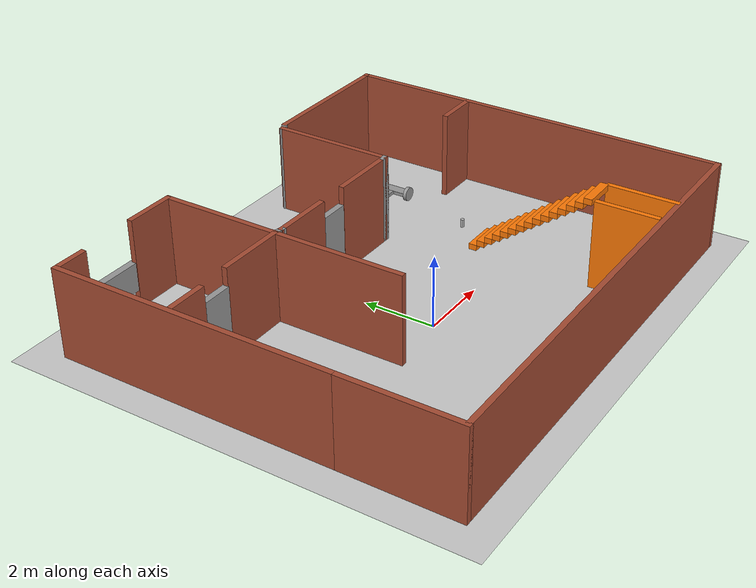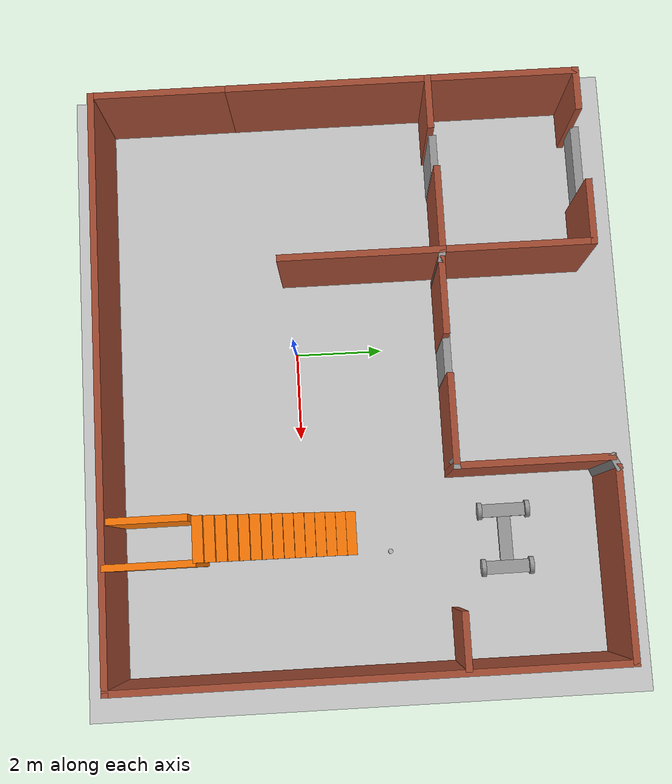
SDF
<sdf version="1.6">
 <world name="default">
  <model name="ground_plane">
   <static>1</static>
   <link name="link">
    <collision name="collision">
     <geometry><plane><normal>0 0 1</normal><size>100 100</size></plane></geometry>
     <surface>
      <contact><collide_bitmask>65535</collide_bitmask></contact>
      <friction><ode><mu>100</mu><mu2>50</mu2></ode></friction>
     </surface>
    </collision>
    <visual name="visual">
     <cast_shadows>0</cast_shadows>
     <geometry><plane><normal>0 0 1</normal><size>100 100</size></plane></geometry>
     <material>
      <script><uri>file://media/materials/scripts/gazebo.material</uri><name>Gazebo/Grey</name></script>
     </material>
    </visual>
   </link>
  </model>
  <model name="mybuilding">
   <pose>0.81 1.31205 0 0 -0 0</pose>
   <link name="Door_0">
    <collision name="Door_0_Collision">
     <geometry><box><size>0.9 0.17 2</size></box></geometry>
     <pose>0 0 1 0 -0 0</pose>
    </collision>
    <visual name="Door_0_Visual">
     <pose>0 0 1 0 -0 0</pose>
     <geometry><box><size>0.9 0.17 2</size></box></geometry>
     <material>
      <script><uri>file://media/materials/scripts/gazebo.material</uri><name>Gazebo/Grey</name></script>
     </material>
    </visual>
    <pose>-0.266751 2.08903 0 0 -0 0</pose>
   </link>
   <link name="Door_1">
    <collision name="Door_1_Collision">
     <geometry><box><size>0.9 0.17 2</size></box></geometry>
     <pose>0 0 1 0 -0 0</pose>
    </collision>
    <visual name="Door_1_Visual">
     <pose>0 0 1 0 -0 0</pose>
     <geometry><box><size>0.9 0.17 2</size></box></geometry>
     <material>
      <script><uri>file://media/materials/scripts/gazebo.material</uri><name>Gazebo/Grey</name></script>
     </material>
    </visual>
    <pose>-4.93273 2.09956 0 0 -0 0</pose>
   </link>
   <link name="Stairs_0">
    <visual name="Stairs_0_Visual_0">
     <pose>3.4625 -0.251804 0.083333 0 -0 0</pose>
     <geometry><box><size>1 0.233333 0.166667</size></box></geometry>
     <material>
      <script><uri>file://media/materials/scripts/gazebo.material</uri><name>Gazebo/Grey</name></script>
      <ambient>0.996078 0.47451 0.0196078 1</ambient>
     </material>
     <meta><layer>0</layer></meta>
    </visual>
    <collision name="Stairs_0_Collision_0">
     <geometry><box><size>1 0.233333 0.166667</size></box></geometry>
     <pose>3.4625 -0.251804 0.083333 0 -0 0</pose>
    </collision>
    <visual name="Stairs_0_Visual_1">
     <pose>3.4625 -0.485137 0.25 0 -0 0</pose>
     <geometry><box><size>1 0.233333 0.166667</size></box></geometry>
     <material>
      <script><uri>file://media/materials/scripts/gazebo.material</uri><name>Gazebo/Grey</name></script>
      <ambient>0.996078 0.47451 0.0196078 1</ambient>
     </material>
     <meta><layer>0</layer></meta>
    </visual>
    <collision name="Stairs_0_Collision_1">
     <geometry><box><size>1 0.233333 0.166667</size></box></geometry>
     <pose>3.4625 -0.485137 0.25 0 -0 0</pose>
    </collision>
    <visual name="Stairs_0_Visual_2">
     <pose>3.4625 -0.71847 0.416667 0 -0 0</pose>
     <geometry><box><size>1 0.233333 0.166667</size></box></geometry>
     <material>
      <script><uri>file://media/materials/scripts/gazebo.material</uri><name>Gazebo/Grey</name></script>
      <ambient>0.996078 0.47451 0.0196078 1</ambient>
     </material>
     <meta><layer>0</layer></meta>
    </visual>
    <collision name="Stairs_0_Collision_2">
     <geometry><box><size>1 0.233333 0.166667</size></box></geometry>
     <pose>3.4625 -0.71847 0.416667 0 -0 0</pose>
    </collision>
    <visual name="Stairs_0_Visual_3">
     <pose>3.4625 -0.951804 0.583333 0 -0 0</pose>
     <geometry><box><size>1 0.233333 0.166667</size></box></geometry>
     <material>
      <script><uri>file://media/materials/scripts/gazebo.material</uri><name>Gazebo/Grey</name></script>
      <ambient>0.996078 0.47451 0.0196078 1</ambient>
     </material>
     <meta><layer>0</layer></meta>
    </visual>
    <collision name="Stairs_0_Collision_3">
     <geometry><box><size>1 0.233333 0.166667</size></box></geometry>
     <pose>3.4625 -0.951804 0.583333 0 -0 0</pose>
    </collision>
    <visual name="Stairs_0_Visual_4">
     <pose>3.4625 -1.18514 0.75 0 -0 0</pose>
     <geometry><box><size>1 0.233333 0.166667</size></box></geometry>
     <material>
      <script><uri>file://media/materials/scripts/gazebo.material</uri><name>Gazebo/Grey</name></script>
      <ambient>0.996078 0.47451 0.0196078 1</ambient>
     </material>
     <meta><layer>0</layer></meta>
    </visual>
    <collision name="Stairs_0_Collision_4">
     <geometry><box><size>1 0.233333 0.166667</size></box></geometry>
     <pose>3.4625 -1.18514 0.75 0 -0 0</pose>
    </collision>
    <visual name="Stairs_0_Visual_5">
     <pose>3.4625 -1.41847 0.916667 0 -0 0</pose>
     <geometry><box><size>1 0.233333 0.166667</size></box></geometry>
     <material>
      <script><uri>file://media/materials/scripts/gazebo.material</uri><name>Gazebo/Grey</name></script>
      <ambient>0.996078 0.47451 0.0196078 1</ambient>
     </material>
     <meta><layer>0</layer></meta>
    </visual>
    <collision name="Stairs_0_Collision_5">
     <geometry><box><size>1 0.233333 0.166667</size></box></geometry>
     <pose>3.4625 -1.41847 0.916667 0 -0 0</pose>
    </collision>
    <visual name="Stairs_0_Visual_6">
     <pose>3.4625 -1.6518 1.08333 0 -0 0</pose>
     <geometry><box><size>1 0.233333 0.166667</size></box></geometry>
     <material>
      <script><uri>file://media/materials/scripts/gazebo.material</uri><name>Gazebo/Grey</name></script>
      <ambient>0.996078 0.47451 0.0196078 1</ambient>
     </material>
     <meta><layer>0</layer></meta>
    </visual>
    <collision name="Stairs_0_Collision_6">
     <geometry><box><size>1 0.233333 0.166667</size></box></geometry>
     <pose>3.4625 -1.6518 1.08333 0 -0 0</pose>
    </collision>
    <visual name="Stairs_0_Visual_7">
     <pose>3.4625 -1.88514 1.25 0 -0 0</pose>
     <geometry><box><size>1 0.233333 0.166667</size></box></geometry>
     <material>
      <script><uri>file://media/materials/scripts/gazebo.material</uri><name>Gazebo/Grey</name></script>
      <ambient>0.996078 0.47451 0.0196078 1</ambient>
     </material>
     <meta><layer>0</layer></meta>
    </visual>
    <collision name="Stairs_0_Collision_7">
     <geometry><box><size>1 0.233333 0.166667</size></box></geometry>
     <pose>3.4625 -1.88514 1.25 0 -0 0</pose>
    </collision>
    <visual name="Stairs_0_Visual_8">
     <pose>3.4625 -2.11847 1.41667 0 -0 0</pose>
     <geometry><box><size>1 0.233333 0.166667</size></box></geometry>
     <material>
      <script><uri>file://media/materials/scripts/gazebo.material</uri><name>Gazebo/Grey</name></script>
      <ambient>0.996078 0.47451 0.0196078 1</ambient>
     </material>
     <meta><layer>0</layer></meta>
    </visual>
    <collision name="Stairs_0_Collision_8">
     <geometry><box><size>1 0.233333 0.166667</size></box></geometry>
     <pose>3.4625 -2.11847 1.41667 0 -0 0</pose>
    </collision>
    <visual name="Stairs_0_Visual_9">
     <pose>3.4625 -2.3518 1.58333 0 -0 0</pose>
     <geometry><box><size>1 0.233333 0.166667</size></box></geometry>
     <material>
      <script><uri>file://media/materials/scripts/gazebo.material</uri><name>Gazebo/Grey</name></script>
      <ambient>0.996078 0.47451 0.0196078 1</ambient>
     </material>
     <meta><layer>0</layer></meta>
    </visual>
    <collision name="Stairs_0_Collision_9">
     <geometry><box><size>1 0.233333 0.166667</size></box></geometry>
     <pose>3.4625 -2.3518 1.58333 0 -0 0</pose>
    </collision>
    <visual name="Stairs_0_Visual_10">
     <pose>3.4625 -2.58514 1.75 0 -0 0</pose>
     <geometry><box><size>1 0.233333 0.166667</size></box></geometry>
     <material>
      <script><uri>file://media/materials/scripts/gazebo.material</uri><name>Gazebo/Grey</name></script>
      <ambient>0.996078 0.47451 0.0196078 1</ambient>
     </material>
     <meta><layer>0</layer></meta>
    </visual>
    <collision name="Stairs_0_Collision_10">
     <geometry><box><size>1 0.233333 0.166667</size></box></geometry>
     <pose>3.4625 -2.58514 1.75 0 -0 0</pose>
    </collision>
    <visual name="Stairs_0_Visual_11">
     <pose>3.4625 -2.81847 1.91667 0 -0 0</pose>
     <geometry><box><size>1 0.233333 0.166667</size></box></geometry>
     <material>
      <script><uri>file://media/materials/scripts/gazebo.material</uri><name>Gazebo/Grey</name></script>
      <ambient>0.996078 0.47451 0.0196078 1</ambient>
     </material>
     <meta><layer>0</layer></meta>
    </visual>
    <collision name="Stairs_0_Collision_11">
     <geometry><box><size>1 0.233333 0.166667</size></box></geometry>
     <pose>3.4625 -2.81847 1.91667 0 -0 0</pose>
    </collision>
    <visual name="Stairs_0_Visual_12">
     <pose>3.4625 -3.0518 2.08333 0 -0 0</pose>
     <geometry><box><size>1 0.233333 0.166667</size></box></geometry>
     <material>
      <script><uri>file://media/materials/scripts/gazebo.material</uri><name>Gazebo/Grey</name></script>
      <ambient>0.996078 0.47451 0.0196078 1</ambient>
     </material>
     <meta><layer>0</layer></meta>
    </visual>
    <collision name="Stairs_0_Collision_12">
     <geometry><box><size>1 0.233333 0.166667</size></box></geometry>
     <pose>3.4625 -3.0518 2.08333 0 -0 0</pose>
    </collision>
    <visual name="Stairs_0_Visual_13">
     <pose>3.4625 -3.28514 2.25 0 -0 0</pose>
     <geometry><box><size>1 0.233333 0.166667</size></box></geometry>
     <material>
      <script><uri>file://media/materials/scripts/gazebo.material</uri><name>Gazebo/Grey</name></script>
      <ambient>0.996078 0.47451 0.0196078 1</ambient>
     </material>
     <meta><layer>0</layer></meta>
    </visual>
    <collision name="Stairs_0_Collision_13">
     <geometry><box><size>1 0.233333 0.166667</size></box></geometry>
     <pose>3.4625 -3.28514 2.25 0 -0 0</pose>
    </collision>
    <visual name="Stairs_0_Visual_14">
     <pose>3.4625 -3.51847 2.41667 0 -0 0</pose>
     <geometry><box><size>1 0.233333 0.166667</size></box></geometry>
     <material>
      <script><uri>file://media/materials/scripts/gazebo.material</uri><name>Gazebo/Grey</name></script>
      <ambient>0.996078 0.47451 0.0196078 1</ambient>
     </material>
     <meta><layer>0</layer></meta>
    </visual>
    <collision name="Stairs_0_Collision_14">
     <geometry><box><size>1 0.233333 0.166667</size></box></geometry>
     <pose>3.4625 -3.51847 2.41667 0 -0 0</pose>
    </collision>
   </link>
   <link name="Wall_0">
    <collision name="Wall_0_Collision">
     <geometry><box><size>3.25 0.15 2.5</size></box></geometry>
     <pose>0 0 1.25 0 -0 0</pose>
    </collision>
    <visual name="Wall_0_Visual">
     <pose>0 0 1.25 0 -0 0</pose>
     <geometry><box><size>3.25 0.15 2.5</size></box></geometry>
     <material>
      <script><uri>file://media/materials/scripts/gazebo.material</uri><name>Gazebo/Bricks</name></script>
      <ambient>0 0 1 1</ambient>
     </material>
     <meta><layer>0</layer></meta>
    </visual>
    <pose>-6.55 -4.01205 0 0 0 -1.5708</pose>
   </link>
   <link name="Wall_1">
    <collision name="Wall_1_Collision">
     <geometry><box><size>13.25 0.15 2.5</size></box></geometry>
     <pose>0 0 1.25 0 -0 0</pose>
    </collision>
    <visual name="Wall_1_Visual">
     <pose>0 0 1.25 0 -0 0</pose>
     <geometry><box><size>13.25 0.15 2.5</size></box></geometry>
     <material>
      <script><uri>file://media/materials/scripts/gazebo.material</uri><name>Gazebo/Bricks</name></script>
      <ambient>0 0 1 1</ambient>
     </material>
     <meta><layer>0</layer></meta>
    </visual>
    <pose>0 -5.56205 0 0 -0 0</pose>
   </link>
   <link name="Wall_14">
    <collision name="Wall_14_Collision">
     <geometry><box><size>11.25 0.15 2.5</size></box></geometry>
     <pose>0 0 1.25 0 -0 0</pose>
    </collision>
    <visual name="Wall_14_Visual">
     <pose>0 0 1.25 0 -0 0</pose>
     <geometry><box><size>11.25 0.15 2.5</size></box></geometry>
     <material>
      <script><uri>file://media/materials/scripts/gazebo.material</uri><name>Gazebo/Bricks</name></script>
      <ambient>1 1 1 1</ambient>
     </material>
     <meta><layer>0</layer></meta>
    </visual>
    <pose>6.55 -0.012052 0 0 -0 1.5708</pose>
   </link>
   <link name="Wall_15">
    <collision name="Wall_15_Collision">
     <geometry><box><size>4.25 0.15 2.5</size></box></geometry>
     <pose>0 0 1.25 0 -0 0</pose>
    </collision>
    <visual name="Wall_15_Visual">
     <pose>0 0 1.25 0 -0 0</pose>
     <geometry><box><size>4.25 0.15 2.5</size></box></geometry>
     <material>
      <script><uri>file://media/materials/scripts/gazebo.material</uri><name>Gazebo/Bricks</name></script>
      <ambient>1 1 1 1</ambient>
     </material>
     <meta><layer>0</layer></meta>
    </visual>
    <pose>4.5 5.53795 0 0 -0 3.14159</pose>
   </link>
   <link name="Wall_19">
    <collision name="Wall_19_Collision">
     <geometry><box><size>8 0.15 2.5</size></box></geometry>
     <pose>0 0 1.25 0 -0 0</pose>
    </collision>
    <visual name="Wall_19_Visual">
     <pose>0 0 1.25 0 -0 0</pose>
     <geometry><box><size>8 0.15 2.5</size></box></geometry>
     <material>
      <script><uri>file://media/materials/scripts/gazebo.material</uri><name>Gazebo/Bricks</name></script>
      <ambient>1 1 1 1</ambient>
     </material>
     <meta><layer>0</layer></meta>
    </visual>
    <pose>-6.55 1.46295 0 0 -0 1.5708</pose>
   </link>
   <link name="Wall_24">
    <collision name="Wall_24_Collision">
     <geometry><box><size>1 0.15 2.5</size></box></geometry>
     <pose>0 0 1.25 0 -0 0</pose>
    </collision>
    <visual name="Wall_24_Visual">
     <pose>0 0 1.25 0 -0 0</pose>
     <geometry><box><size>1 0.15 2.5</size></box></geometry>
     <material>
      <script><uri>file://media/materials/scripts/gazebo.material</uri><name>Gazebo/Bricks</name></script>
      <ambient>1 1 1 1</ambient>
     </material>
     <meta><layer>0</layer></meta>
    </visual>
    <pose>-6.125 5.38795 0 0 -0 0</pose>
   </link>
   <link name="Wall_26">
    <collision name="Wall_26_Collision">
     <geometry><box><size>1.5 0.15 2.5</size></box></geometry>
     <pose>0 0 1.25 0 -0 0</pose>
    </collision>
    <visual name="Wall_26_Visual">
     <pose>0 0 1.25 0 -0 0</pose>
     <geometry><box><size>1.5 0.15 2.5</size></box></geometry>
     <material>
      <script><uri>file://media/materials/scripts/gazebo.material</uri><name>Gazebo/Bricks</name></script>
      <ambient>1 1 1 1</ambient>
     </material>
     <meta><layer>0</layer></meta>
    </visual>
    <pose>-3.23875 5.46069 0 0 -0 0</pose>
   </link>
   <link name="Wall_31">
    <collision name="Wall_31_Collision">
     <geometry><box><size>1.75 0.15 2.5</size></box></geometry>
     <pose>0 0 1.25 0 -0 0</pose>
    </collision>
    <visual name="Wall_31_Visual">
     <pose>0 0 1.25 0 -0 0</pose>
     <geometry><box><size>1.75 0.15 2.5</size></box></geometry>
     <material>
      <script><uri>file://media/materials/scripts/gazebo.material</uri><name>Gazebo/Bricks</name></script>
      <ambient>1 1 1 1</ambient>
     </material>
     <meta><layer>0</layer></meta>
    </visual>
    <pose>-1.53512 2.06914 0 0 -0 3.14159</pose>
   </link>
   <link name="Wall_33">
    <collision name="Wall_33_Collision">
     <geometry><box><size>3.5 0.15 2.5</size></box></geometry>
     <pose>0 0 1.25 0 -0 0</pose>
    </collision>
    <visual name="Wall_33_Visual">
     <pose>0 0 1.25 0 -0 0</pose>
     <geometry><box><size>3.5 0.15 2.5</size></box></geometry>
     <material>
      <script><uri>file://media/materials/scripts/gazebo.material</uri><name>Gazebo/Bricks</name></script>
      <ambient>1 1 1 1</ambient>
     </material>
     <meta><layer>0</layer></meta>
    </visual>
    <pose>-2.56375 3.78569 0 0 0 -1.5708</pose>
   </link>
   <link name="Wall_34">
    <collision name="Wall_34_Collision">
     <geometry><box><size>0.382374 0.15 2.5</size></box></geometry>
     <pose>0 0 1.25 0 -0 0</pose>
    </collision>
    <visual name="Wall_34_Visual">
     <pose>0 0 1.25 0 -0 0</pose>
     <geometry><box><size>0.382374 0.15 2.5</size></box></geometry>
     <material>
      <script><uri>file://media/materials/scripts/gazebo.material</uri><name>Gazebo/Grey</name></script>
      <ambient>1 1 1 1</ambient>
     </material>
     <meta><layer>0</layer></meta>
    </visual>
    <pose>-2.44943 2.08991 0 0 0 -0.179779</pose>
   </link>
   <link name="Wall_36">
    <collision name="Wall_36_Collision">
     <geometry><box><size>2 0.15 2.5</size></box></geometry>
     <pose>0 0 1.25 0 -0 0</pose>
    </collision>
    <visual name="Wall_36_Visual">
     <pose>0 0 1.25 0 -0 0</pose>
     <geometry><box><size>2 0.15 2.5</size></box></geometry>
     <material>
      <script><uri>file://media/materials/scripts/gazebo.material</uri><name>Gazebo/Bricks</name></script>
      <ambient>1 1 1 1</ambient>
     </material>
     <meta><layer>0</layer></meta>
    </visual>
    <pose>1.19366 2.08435 0 0 -0 0</pose>
   </link>
   <link name="Wall_38">
    <collision name="Wall_38_Collision">
     <geometry><box><size>0.25 0.15 2.5</size></box></geometry>
     <pose>0 0 1.25 0 -0 0</pose>
    </collision>
    <visual name="Wall_38_Visual">
     <pose>0 0 1.25 0 -0 0</pose>
     <geometry><box><size>0.25 0.15 2.5</size></box></geometry>
     <material>
      <script><uri>file://media/materials/scripts/gazebo.material</uri><name>Gazebo/Grey</name></script>
      <ambient>1 1 1 1</ambient>
     </material>
     <meta><layer>0</layer></meta>
    </visual>
    <pose>2.16866 2.08435 0 0 -0 0</pose>
   </link>
   <link name="Wall_39">
    <collision name="Wall_39_Collision">
     <geometry><box><size>3.5 0.15 2.5</size></box></geometry>
     <pose>0 0 1.25 0 -0 0</pose>
    </collision>
    <visual name="Wall_39_Visual">
     <pose>0 0 1.25 0 -0 0</pose>
     <geometry><box><size>3.5 0.15 2.5</size></box></geometry>
     <material>
      <script><uri>file://media/materials/scripts/gazebo.material</uri><name>Gazebo/Bricks</name></script>
      <ambient>1 1 1 1</ambient>
     </material>
     <meta><layer>0</layer></meta>
    </visual>
    <pose>2.21866 3.75935 0 0 -0 1.5708</pose>
   </link>
   <link name="Wall_40">
    <collision name="Wall_40_Collision">
     <geometry><box><size>0.403479 0.15 2.5</size></box></geometry>
     <pose>0 0 1.25 0 -0 0</pose>
    </collision>
    <visual name="Wall_40_Visual">
     <pose>0 0 1.25 0 -0 0</pose>
     <geometry><box><size>0.403479 0.15 2.5</size></box></geometry>
     <material>
      <script><uri>file://media/materials/scripts/gazebo.material</uri><name>Gazebo/Grey</name></script>
      <ambient>1 1 1 1</ambient>
     </material>
     <meta><layer>0</layer></meta>
    </visual>
    <pose>2.33433 5.48615 0 0 -0 0.421051</pose>
   </link>
   <link name="Wall_44">
    <collision name="Wall_44_Collision">
     <geometry><box><size>2 0.15 2.5</size></box></geometry>
     <pose>0 0 1.25 0 -0 0</pose>
    </collision>
    <visual name="Wall_44_Visual">
     <pose>0 0 1.25 0 -0 0</pose>
     <geometry><box><size>2 0.15 2.5</size></box></geometry>
     <material>
      <script><uri>file://media/materials/scripts/gazebo.material</uri><name>Gazebo/Bricks</name></script>
      <ambient>1 1 1 1</ambient>
     </material>
     <meta><layer>0</layer></meta>
    </visual>
    <pose>-3.48875 2.11069 0 0 -0 3.14159</pose>
   </link>
   <link name="Wall_46">
    <collision name="Wall_46_Collision">
     <geometry><box><size>1.25 0.15 2.5</size></box></geometry>
     <pose>0 0 1.25 0 -0 0</pose>
    </collision>
    <visual name="Wall_46_Visual">
     <pose>0 0 1.25 0 -0 0</pose>
     <geometry><box><size>1.25 0.15 2.5</size></box></geometry>
     <material>
      <script><uri>file://media/materials/scripts/gazebo.material</uri><name>Gazebo/Bricks</name></script>
      <ambient>1 1 1 1</ambient>
     </material>
     <meta><layer>0</layer></meta>
    </visual>
    <pose>-5.99983 2.03872 0 0 -0 3.14159</pose>
   </link>
   <link name="Wall_48">
    <collision name="Wall_48_Collision">
     <geometry><box><size>3.75 0.15 2.5</size></box></geometry>
     <pose>0 0 1.25 0 -0 0</pose>
    </collision>
    <visual name="Wall_48_Visual">
     <pose>0 0 1.25 0 -0 0</pose>
     <geometry><box><size>3.75 0.15 2.5</size></box></geometry>
     <material>
      <script><uri>file://media/materials/scripts/gazebo.material</uri><name>Gazebo/Bricks</name></script>
      <ambient>1 1 1 1</ambient>
     </material>
     <meta><layer>0</layer></meta>
    </visual>
    <pose>-2.56375 0.310689 0 0 0 -1.5708</pose>
   </link>
   <link name="Wall_50">
    <collision name="Wall_50_Collision">
     <geometry><box><size>1.25 0.15 2.5</size></box></geometry>
     <pose>0 0 1.25 0 -0 0</pose>
    </collision>
    <visual name="Wall_50_Visual">
     <pose>0 0 1.25 0 -0 0</pose>
     <geometry><box><size>1.25 0.15 2.5</size></box></geometry>
     <material>
      <script><uri>file://media/materials/scripts/gazebo.material</uri><name>Gazebo/Bricks</name></script>
      <ambient>1 1 1 1</ambient>
     </material>
     <meta><layer>0</layer></meta>
    </visual>
    <pose>5.90862 2.03872 0 0 -0 3.14159</pose>
   </link>
   <link name="Wall_52">
    <collision name="Wall_52_Collision">
     <geometry><box><size>1.75 0.15 2.5</size></box></geometry>
     <pose>0 0 1.25 0 -0 0</pose>
    </collision>
    <visual name="Wall_52_Visual">
     <pose>0 0 1.25 0 -0 0</pose>
     <geometry><box><size>1.75 0.15 2.5</size></box></geometry>
     <material>
      <script><uri>file://media/materials/scripts/gazebo.material</uri><name>Gazebo/Grey</name></script>
      <ambient>0.996078 0.47451 0.0196078 1</ambient>
     </material>
     <meta><layer>0</layer></meta>
    </visual>
    <pose>2.99103 -4.58623 0 0 0 -1.5708</pose>
   </link>
   <link name="Wall_54">
    <collision name="Wall_54_Collision">
     <geometry><box><size>2 0.15 2.5</size></box></geometry>
     <pose>0 0 1.25 0 -0 0</pose>
    </collision>
    <visual name="Wall_54_Visual">
     <pose>0 0 1.25 0 -0 0</pose>
     <geometry><box><size>2 0.15 2.5</size></box></geometry>
     <material>
      <script><uri>file://media/materials/scripts/gazebo.material</uri><name>Gazebo/Grey</name></script>
      <ambient>0.996078 0.47451 0.0196078 1</ambient>
     </material>
     <meta><layer>0</layer></meta>
    </visual>
    <pose>3.96439 -4.57435 0 0 0 -1.5708</pose>
   </link>
   <link name="Window_0">
    <collision name="Window_0_Collision">
     <geometry><box><size>1.71253 0.2 0.8</size></box></geometry>
     <pose>0 0 0.4 0 -0 0</pose>
    </collision>
    <visual name="Window_0_Visual">
     <pose>0 0 0.4 0 -0 0</pose>
     <geometry><box><size>1.71253 0.2 0.8</size></box></geometry>
     <material>
      <script><uri>file://media/materials/scripts/gazebo.material</uri><name>Gazebo/Grey</name></script>
     </material>
    </visual>
    <pose>-4.80375 5.50137 0.5 0 -0 0</pose>
   </link>
   <static>1</static>
  </model>
  <model name="beer">
   <link name="link">
    <pose>0 0 0.115 0 -0 0</pose>
    <inertial>
     <mass>0.39</mass>
     <inertia><ixx>0.00058</ixx><ixy>0</ixy><ixz>0</ixz><iyy>0.00058</iyy><iyz>0</iyz><izz>0.00019</izz></inertia>
    </inertial>
    <collision name="collision">
     <geometry><cylinder><radius>0.055</radius><length>0.23</length></cylinder></geometry>
    </collision>
    <visual name="visual">
     <geometry><cylinder><radius>0.055</radius><length>0.23</length></cylinder></geometry>
     <material>
      <script>
       <uri>model://beer/materials/scripts</uri>
       <uri>model://beer/materials/textures</uri>
       <name>Beer/Diffuse</name>
      </script>
     </material>
    </visual>
   </link>
   <pose>4.73878 1.94468 -7e-06 0 0 -1.6e-05</pose>
  </model>
  <model name="twowheelsrobotModel_clone">
   <link name="link_0">
    <pose>0 0 0.2 0 -0 0</pose>
    <inertial>
     <mass>1</mass>
     <inertia>
      <ixx>0.166667</ixx>
      <ixy>0</ixy>
      <ixz>0</ixz>
      <iyy>0.166667</iyy>
      <iyz>0</iyz>
      <izz>0.166667</izz>
     </inertia>
    </inertial>
    <visual name="visual">
     <geometry><box><size>0.3 1 0.1</size></box></geometry>
     <material>
      <lighting>1</lighting>
      <script><uri>file://media/materials/scripts/gazebo.material</uri><name>Gazebo/Grey</name></script>
      <shader type="pixel"><normal_map>__default__</normal_map></shader>
      <ambient>0.3 0.3 0.3 1</ambient>
      <diffuse>0.7 0.7 0.7 1</diffuse>
      <specular>0.01 0.01 0.01 1</specular>
      <emissive>0 0 0 1</emissive>
     </material>
    </visual>
    <collision name="collision">
     <geometry><box><size>0.3 1 0.1</size></box></geometry>
     <surface>
      <friction>
       <ode><mu>1</mu><mu2>1</mu2><fdir1>0 0 0</fdir1><slip1>0</slip1><slip2>0</slip2></ode>
       <torsional>
        <coefficient>1</coefficient>
        <patch_radius>0</patch_radius>
        <surface_radius>0</surface_radius>
        <use_patch_radius>1</use_patch_radius>
        <ode><slip>0</slip></ode>
       </torsional>
      </friction>
      <bounce><restitution_coefficient>0</restitution_coefficient><threshold>1e+06</threshold></bounce>
      <contact>
       <collide_without_contact>0</collide_without_contact>
       <collide_without_contact_bitmask>1</collide_without_contact_bitmask>
       <collide_bitmask>1</collide_bitmask>
       <ode>
        <soft_cfm>0</soft_cfm>
        <soft_erp>0.2</soft_erp>
        <kp>1e+13</kp>
        <kd>1</kd>
        <max_vel>0.01</max_vel>
        <min_depth>0</min_depth>
       </ode>
       <bullet>
        <split_impulse>1</split_impulse>
        <split_impulse_penetration_threshold>-0.01</split_impulse_penetration_threshold>
        <soft_cfm>0</soft_cfm>
        <soft_erp>0.2</soft_erp>
        <kp>1e+13</kp>
        <kd>1</kd>
       </bullet>
      </contact>
     </surface>
    </collision>
   </link>
   <link name="link_0_clone">
    <pose>-0.65 -0 0.2 0 -0 0</pose>
    <inertial>
     <mass>1</mass>
     <inertia>
      <ixx>0.166667</ixx>
      <ixy>0</ixy>
      <ixz>0</ixz>
      <iyy>0.166667</iyy>
      <iyz>0</iyz>
      <izz>0.166667</izz>
     </inertia>
     <pose>0 0 0 0 -0 1.5707</pose>
    </inertial>
    <visual name="visual">
     <geometry><box><size>1 0.3 0.1</size></box></geometry>
     <material>
      <lighting>1</lighting>
      <script><uri>file://media/materials/scripts/gazebo.material</uri><name>Gazebo/Grey</name></script>
      <shader type="pixel"><normal_map>__default__</normal_map></shader>
      <ambient>0.3 0.3 0.3 1</ambient>
      <diffuse>0.7 0.7 0.7 1</diffuse>
      <specular>0.01 0.01 0.01 1</specular>
      <emissive>0 0 0 1</emissive>
     </material>
    </visual>
    <collision name="collision">
     <geometry><box><size>1 0.3 0.1</size></box></geometry>
     <surface>
      <friction>
       <ode><mu>1</mu><mu2>1</mu2><fdir1>0 0 0</fdir1><slip1>0</slip1><slip2>0</slip2></ode>
       <torsional>
        <coefficient>1</coefficient>
        <patch_radius>0</patch_radius>
        <surface_radius>0</surface_radius>
        <use_patch_radius>1</use_patch_radius>
        <ode><slip>0</slip></ode>
       </torsional>
      </friction>
      <bounce><restitution_coefficient>0</restitution_coefficient><threshold>1e+06</threshold></bounce>
      <contact>
       <collide_without_contact>0</collide_without_contact>
       <collide_without_contact_bitmask>1</collide_without_contact_bitmask>
       <collide_bitmask>1</collide_bitmask>
       <ode>
        <soft_cfm>0</soft_cfm>
        <soft_erp>0.2</soft_erp>
        <kp>1e+13</kp>
        <kd>1</kd>
        <max_vel>0.01</max_vel>
        <min_depth>0</min_depth>
       </ode>
       <bullet>
        <split_impulse>1</split_impulse>
        <split_impulse_penetration_threshold>-0.01</split_impulse_penetration_threshold>
        <soft_cfm>0</soft_cfm>
        <soft_erp>0.2</soft_erp>
        <kp>1e+13</kp>
        <kd>1</kd>
       </bullet>
      </contact>
     </surface>
    </collision>
   </link>
   <link name="link_0_clone_0">
    <pose>-1.3 -0 0.2 0 -0 0</pose>
    <inertial>
     <mass>1</mass>
     <inertia>
      <ixx>0.166667</ixx>
      <ixy>0</ixy>
      <ixz>0</ixz>
      <iyy>0.166667</iyy>
      <iyz>0</iyz>
      <izz>0.166667</izz>
     </inertia>
    </inertial>
    <visual name="visual">
     <geometry><box><size>0.3 1 0.1</size></box></geometry>
     <material>
      <lighting>1</lighting>
      <script><uri>file://media/materials/scripts/gazebo.material</uri><name>Gazebo/Grey</name></script>
      <shader type="pixel"><normal_map>__default__</normal_map></shader>
      <ambient>0.3 0.3 0.3 1</ambient>
      <diffuse>0.7 0.7 0.7 1</diffuse>
      <specular>0.01 0.01 0.01 1</specular>
      <emissive>0 0 0 1</emissive>
     </material>
    </visual>
    <collision name="collision">
     <geometry><box><size>0.3 1 0.1</size></box></geometry>
     <surface>
      <friction>
       <ode><mu>1</mu><mu2>1</mu2><fdir1>0 0 0</fdir1><slip1>0</slip1><slip2>0</slip2></ode>
       <torsional>
        <coefficient>1</coefficient>
        <patch_radius>0</patch_radius>
        <surface_radius>0</surface_radius>
        <use_patch_radius>1</use_patch_radius>
        <ode><slip>0</slip></ode>
       </torsional>
      </friction>
      <bounce><restitution_coefficient>0</restitution_coefficient><threshold>1e+06</threshold></bounce>
      <contact>
       <collide_without_contact>0</collide_without_contact>
       <collide_without_contact_bitmask>1</collide_without_contact_bitmask>
       <collide_bitmask>1</collide_bitmask>
       <ode>
        <soft_cfm>0</soft_cfm>
        <soft_erp>0.2</soft_erp>
        <kp>1e+13</kp>
        <kd>1</kd>
        <max_vel>0.01</max_vel>
        <min_depth>0</min_depth>
       </ode>
       <bullet>
        <split_impulse>1</split_impulse>
        <split_impulse_penetration_threshold>-0.01</split_impulse_penetration_threshold>
        <soft_cfm>0</soft_cfm>
        <soft_erp>0.2</soft_erp>
        <kp>1e+13</kp>
        <kd>1</kd>
       </bullet>
      </contact>
     </surface>
    </collision>
   </link>
   <link name="link_1">
    <pose>0 -0.550019 0.2 1.5707 -0 0</pose>
    <inertial>
     <mass>1</mass>
     <inertia><ixx>0.145833</ixx><ixy>0</ixy><ixz>0</ixz><iyy>0.145833</iyy><iyz>0</iyz><izz>0.125</izz></inertia>
    </inertial>
    <visual name="visual">
     <geometry><cylinder><radius>0.2</radius><length>0.1</length></cylinder></geometry>
     <material>
      <lighting>1</lighting>
      <script><uri>file://media/materials/scripts/gazebo.material</uri><name>Gazebo/Grey</name></script>
      <shader type="pixel"><normal_map>__default__</normal_map></shader>
      <ambient>0.3 0.3 0.3 1</ambient>
      <diffuse>0.7 0.7 0.7 1</diffuse>
      <specular>0.01 0.01 0.01 1</specular>
      <emissive>0 0 0 1</emissive>
     </material>
    </visual>
    <collision name="collision">
     <geometry><cylinder><radius>0.2</radius><length>0.1</length></cylinder></geometry>
     <surface>
      <friction>
       <ode><mu>1</mu><mu2>1</mu2><fdir1>0 0 0</fdir1><slip1>0</slip1><slip2>0</slip2></ode>
       <torsional>
        <coefficient>1</coefficient>
        <patch_radius>0</patch_radius>
        <surface_radius>0</surface_radius>
        <use_patch_radius>1</use_patch_radius>
        <ode><slip>0</slip></ode>
       </torsional>
      </friction>
      <bounce><restitution_coefficient>0</restitution_coefficient><threshold>1e+06</threshold></bounce>
      <contact>
       <collide_without_contact>0</collide_without_contact>
       <collide_without_contact_bitmask>1</collide_without_contact_bitmask>
       <collide_bitmask>1</collide_bitmask>
       <ode>
        <soft_cfm>0</soft_cfm>
        <soft_erp>0.2</soft_erp>
        <kp>1e+13</kp>
        <kd>1</kd>
        <max_vel>0.01</max_vel>
        <min_depth>0</min_depth>
       </ode>
       <bullet>
        <split_impulse>1</split_impulse>
        <split_impulse_penetration_threshold>-0.01</split_impulse_penetration_threshold>
        <soft_cfm>0</soft_cfm>
        <soft_erp>0.2</soft_erp>
        <kp>1e+13</kp>
        <kd>1</kd>
       </bullet>
      </contact>
     </surface>
    </collision>
   </link>
   <link name="link_1_clone">
    <pose>0 0.550019 0.2 1.5707 -0 0</pose>
    <inertial>
     <mass>1</mass>
     <inertia><ixx>0.145833</ixx><ixy>0</ixy><ixz>0</ixz><iyy>0.145833</iyy><iyz>0</iyz><izz>0.125</izz></inertia>
    </inertial>
    <visual name="visual">
     <geometry><cylinder><radius>0.2</radius><length>0.1</length></cylinder></geometry>
     <material>
      <lighting>1</lighting>
      <script><uri>file://media/materials/scripts/gazebo.material</uri><name>Gazebo/Grey</name></script>
      <shader type="pixel"><normal_map>__default__</normal_map></shader>
      <ambient>0.3 0.3 0.3 1</ambient>
      <diffuse>0.7 0.7 0.7 1</diffuse>
      <specular>0.01 0.01 0.01 1</specular>
      <emissive>0 0 0 1</emissive>
     </material>
    </visual>
    <collision name="collision">
     <geometry><cylinder><radius>0.2</radius><length>0.1</length></cylinder></geometry>
     <surface>
      <friction>
       <ode><mu>1</mu><mu2>1</mu2><fdir1>0 0 0</fdir1><slip1>0</slip1><slip2>0</slip2></ode>
       <torsional>
        <coefficient>1</coefficient>
        <patch_radius>0</patch_radius>
        <surface_radius>0</surface_radius>
        <use_patch_radius>1</use_patch_radius>
        <ode><slip>0</slip></ode>
       </torsional>
      </friction>
      <bounce><restitution_coefficient>0</restitution_coefficient><threshold>1e+06</threshold></bounce>
      <contact>
       <collide_without_contact>0</collide_without_contact>
       <collide_without_contact_bitmask>1</collide_without_contact_bitmask>
       <collide_bitmask>1</collide_bitmask>
       <ode>
        <soft_cfm>0</soft_cfm>
        <soft_erp>0.2</soft_erp>
        <kp>1e+13</kp>
        <kd>1</kd>
        <max_vel>0.01</max_vel>
        <min_depth>0</min_depth>
       </ode>
       <bullet>
        <split_impulse>1</split_impulse>
        <split_impulse_penetration_threshold>-0.01</split_impulse_penetration_threshold>
        <soft_cfm>0</soft_cfm>
        <soft_erp>0.2</soft_erp>
        <kp>1e+13</kp>
        <kd>1</kd>
       </bullet>
      </contact>
     </surface>
    </collision>
   </link>
   <link name="link_1_clone_0">
    <pose>-1.3 -0.550019 0.2 1.5707 -0 0</pose>
    <inertial>
     <mass>1</mass>
     <inertia><ixx>0.145833</ixx><ixy>0</ixy><ixz>0</ixz><iyy>0.145833</iyy><iyz>0</iyz><izz>0.125</izz></inertia>
    </inertial>
    <visual name="visual">
     <geometry><cylinder><radius>0.2</radius><length>0.1</length></cylinder></geometry>
     <material>
      <lighting>1</lighting>
      <script><uri>file://media/materials/scripts/gazebo.material</uri><name>Gazebo/Grey</name></script>
      <shader type="pixel"><normal_map>__default__</normal_map></shader>
      <ambient>0.3 0.3 0.3 1</ambient>
      <diffuse>0.7 0.7 0.7 1</diffuse>
      <specular>0.01 0.01 0.01 1</specular>
      <emissive>0 0 0 1</emissive>
     </material>
    </visual>
    <collision name="collision">
     <geometry><cylinder><radius>0.2</radius><length>0.1</length></cylinder></geometry>
     <surface>
      <friction>
       <ode><mu>1</mu><mu2>1</mu2><fdir1>0 0 0</fdir1><slip1>0</slip1><slip2>0</slip2></ode>
       <torsional>
        <coefficient>1</coefficient>
        <patch_radius>0</patch_radius>
        <surface_radius>0</surface_radius>
        <use_patch_radius>1</use_patch_radius>
        <ode><slip>0</slip></ode>
       </torsional>
      </friction>
      <bounce><restitution_coefficient>0</restitution_coefficient><threshold>1e+06</threshold></bounce>
      <contact>
       <collide_without_contact>0</collide_without_contact>
       <collide_without_contact_bitmask>1</collide_without_contact_bitmask>
       <collide_bitmask>1</collide_bitmask>
       <ode>
        <soft_cfm>0</soft_cfm>
        <soft_erp>0.2</soft_erp>
        <kp>1e+13</kp>
        <kd>1</kd>
        <max_vel>0.01</max_vel>
        <min_depth>0</min_depth>
       </ode>
       <bullet>
        <split_impulse>1</split_impulse>
        <split_impulse_penetration_threshold>-0.01</split_impulse_penetration_threshold>
        <soft_cfm>0</soft_cfm>
        <soft_erp>0.2</soft_erp>
        <kp>1e+13</kp>
        <kd>1</kd>
       </bullet>
      </contact>
     </surface>
    </collision>
   </link>
   <link name="link_1_clone_clone">
    <pose>-1.3 0.550019 0.2 1.5707 -0 0</pose>
    <inertial>
     <mass>1</mass>
     <inertia><ixx>0.145833</ixx><ixy>0</ixy><ixz>0</ixz><iyy>0.145833</iyy><iyz>0</iyz><izz>0.125</izz></inertia>
    </inertial>
    <visual name="visual">
     <geometry><cylinder><radius>0.2</radius><length>0.1</length></cylinder></geometry>
     <material>
      <lighting>1</lighting>
      <script><uri>file://media/materials/scripts/gazebo.material</uri><name>Gazebo/Grey</name></script>
      <shader type="pixel"><normal_map>__default__</normal_map></shader>
      <ambient>0.3 0.3 0.3 1</ambient>
      <diffuse>0.7 0.7 0.7 1</diffuse>
      <specular>0.01 0.01 0.01 1</specular>
      <emissive>0 0 0 1</emissive>
     </material>
    </visual>
    <collision name="collision">
     <geometry><cylinder><radius>0.2</radius><length>0.1</length></cylinder></geometry>
     <surface>
      <friction>
       <ode><mu>1</mu><mu2>1</mu2><fdir1>0 0 0</fdir1><slip1>0</slip1><slip2>0</slip2></ode>
       <torsional>
        <coefficient>1</coefficient>
        <patch_radius>0</patch_radius>
        <surface_radius>0</surface_radius>
        <use_patch_radius>1</use_patch_radius>
        <ode><slip>0</slip></ode>
       </torsional>
      </friction>
      <bounce><restitution_coefficient>0</restitution_coefficient><threshold>1e+06</threshold></bounce>
      <contact>
       <collide_without_contact>0</collide_without_contact>
       <collide_without_contact_bitmask>1</collide_without_contact_bitmask>
       <collide_bitmask>1</collide_bitmask>
       <ode>
        <soft_cfm>0</soft_cfm>
        <soft_erp>0.2</soft_erp>
        <kp>1e+13</kp>
        <kd>1</kd>
        <max_vel>0.01</max_vel>
        <min_depth>0</min_depth>
       </ode>
       <bullet>
        <split_impulse>1</split_impulse>
        <split_impulse_penetration_threshold>-0.01</split_impulse_penetration_threshold>
        <soft_cfm>0</soft_cfm>
        <soft_erp>0.2</soft_erp>
        <kp>1e+13</kp>
        <kd>1</kd>
       </bullet>
      </contact>
     </surface>
    </collision>
   </link>
   <joint name="link_0_JOINT_0_0" type="fixed">
    <parent>link_0</parent>
    <child>link_0_clone</child>
    <physics>
     <ode><limit><cfm>0</cfm><erp>0.2</erp></limit><suspension><cfm>0</cfm><erp>0.2</erp></suspension></ode>
    </physics>
   </joint>
   <joint name="link_0_JOINT_0" type="revolute">
    <parent>link_0</parent>
    <child>link_1</child>
    <axis>
     <xyz>0 0 1</xyz>
     <use_parent_model_frame>0</use_parent_model_frame>
     <limit>
      <lower>-1.79769e+308</lower>
      <upper>1.79769e+308</upper>
      <effort>-1</effort>
      <velocity>-1</velocity>
     </limit>
     <dynamics>
      <spring_reference>0</spring_reference>
      <spring_stiffness>0</spring_stiffness>
      <damping>0</damping>
      <friction>0</friction>
     </dynamics>
    </axis>
    <physics>
     <ode><limit><cfm>0</cfm><erp>0.2</erp></limit><suspension><cfm>0</cfm><erp>0.2</erp></suspension></ode>
    </physics>
   </joint>
   <joint name="link_0_JOINT_1" type="revolute">
    <parent>link_0</parent>
    <child>link_1_clone</child>
    <axis>
     <xyz>0 0 1</xyz>
     <use_parent_model_frame>0</use_parent_model_frame>
     <limit>
      <lower>-1.79769e+308</lower>
      <upper>1.79769e+308</upper>
      <effort>-1</effort>
      <velocity>-1</velocity>
     </limit>
     <dynamics>
      <spring_reference>0</spring_reference>
      <spring_stiffness>0</spring_stiffness>
      <damping>0</damping>
      <friction>0</friction>
     </dynamics>
    </axis>
    <physics>
     <ode><limit><cfm>0</cfm><erp>0.2</erp></limit><suspension><cfm>0</cfm><erp>0.2</erp></suspension></ode>
    </physics>
   </joint>
   <joint name="link_0_clone_0_JOINT_2" type="revolute">
    <parent>link_0_clone_0</parent>
    <child>link_1_clone_0</child>
    <axis>
     <xyz>1 0 0</xyz>
     <use_parent_model_frame>0</use_parent_model_frame>
     <limit>
      <lower>-1.79769e+308</lower>
      <upper>1.79769e+308</upper>
      <effort>-1</effort>
      <velocity>-1</velocity>
     </limit>
     <dynamics>
      <spring_reference>0</spring_reference>
      <spring_stiffness>0</spring_stiffness>
      <damping>0</damping>
     </dynamics>
    </axis>
    <physics>
     <ode><limit><cfm>0</cfm><erp>0.2</erp></limit><suspension><cfm>0</cfm><erp>0.2</erp></suspension></ode>
    </physics>
   </joint>
   <joint name="link_0_clone_0_JOINT_3" type="revolute">
    <parent>link_0_clone_0</parent>
    <child>link_1_clone_clone</child>
    <axis>
     <xyz>1 0 0</xyz>
     <use_parent_model_frame>0</use_parent_model_frame>
     <limit>
      <lower>-1.79769e+308</lower>
      <upper>1.79769e+308</upper>
      <effort>-1</effort>
      <velocity>-1</velocity>
     </limit>
     <dynamics>
      <spring_reference>0</spring_reference>
      <spring_stiffness>0</spring_stiffness>
      <damping>0</damping>
     </dynamics>
    </axis>
    <physics>
     <ode><limit><cfm>0</cfm><erp>0.2</erp></limit><suspension><cfm>0</cfm><erp>0.2</erp></suspension></ode>
    </physics>
   </joint>
   <joint name="link_0_clone_JOINT_1" type="revolute">
    <parent>link_0_clone</parent>
    <child>link_0_clone_0</child>
    <axis>
     <xyz>1 0 0</xyz>
     <use_parent_model_frame>0</use_parent_model_frame>
     <limit>
      <lower>-1.79769e+308</lower>
      <upper>1.79769e+308</upper>
      <effort>-1</effort>
      <velocity>-1</velocity>
     </limit>
     <dynamics>
      <spring_reference>0</spring_reference>
      <spring_stiffness>0</spring_stiffness>
      <damping>0</damping>
     </dynamics>
    </axis>
    <physics>
     <ode><limit><cfm>0</cfm><erp>0.2</erp></limit><suspension><cfm>0</cfm><erp>0.2</erp></suspension></ode>
    </physics>
   </joint>
   <static>0</static>
   <pose>5.24025 4.60366 5e-06 0 -6e-06 0.006698</pose>
  </model>
 </world>
</sdf>
